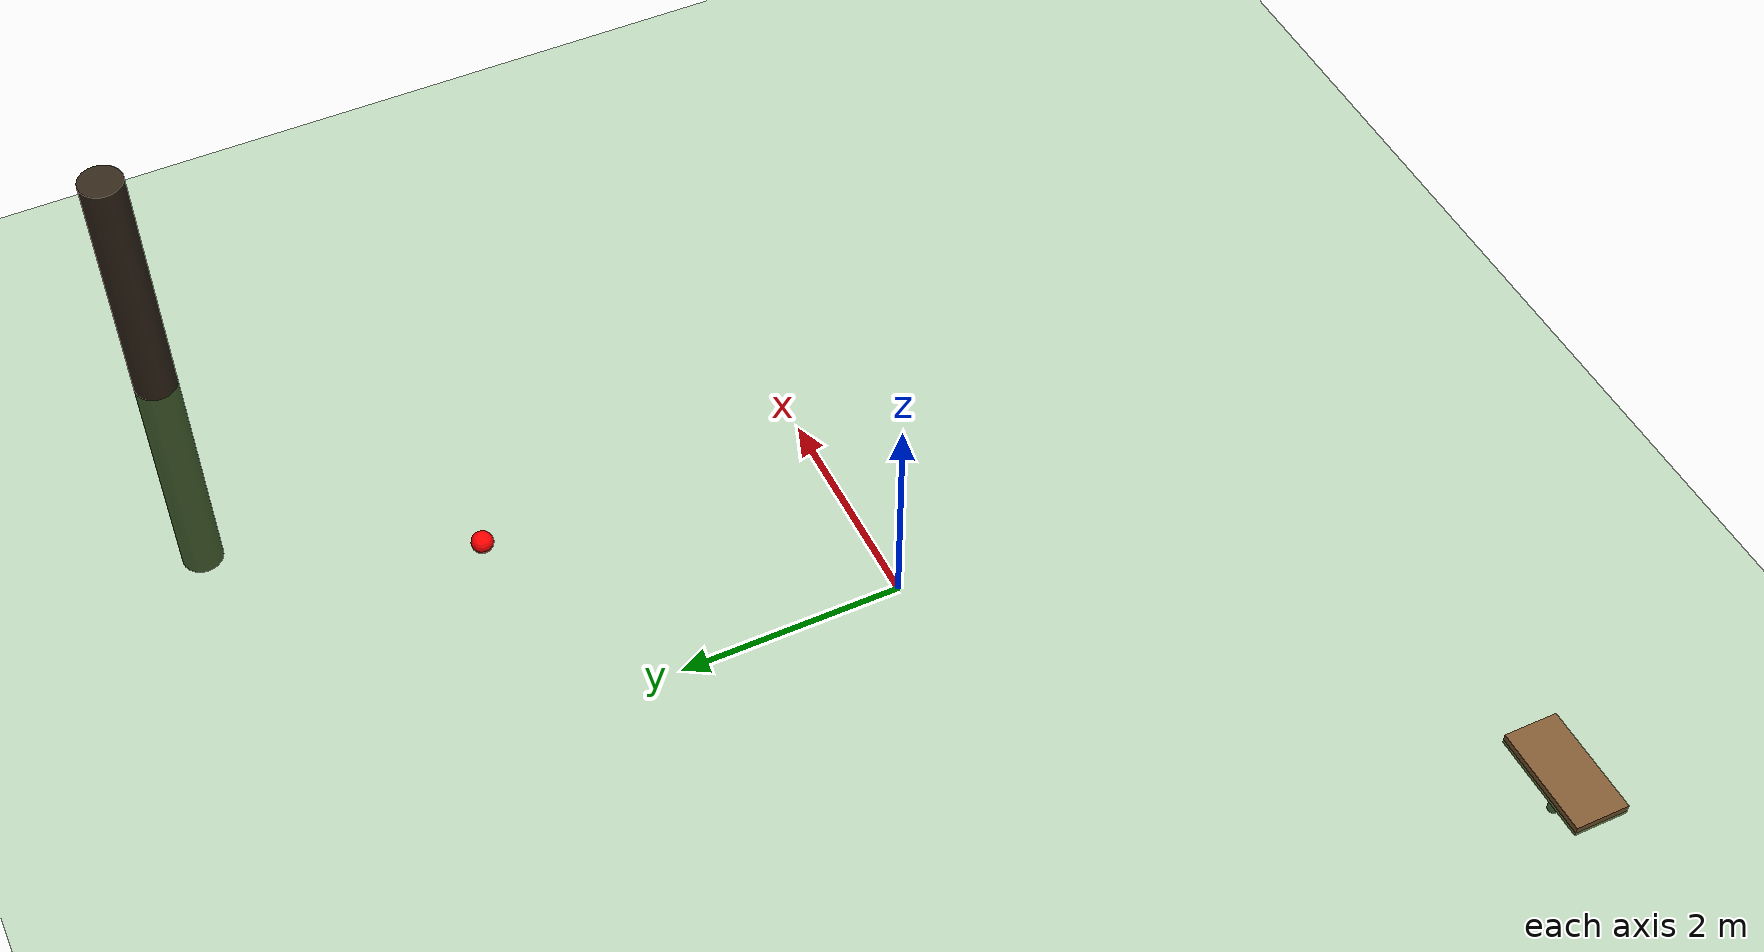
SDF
<?xml version="1.0"?>
<sdf version="1.4">
  <world name="garden_world">

    <!-- place user camera -->
    <gui>
      <camera name="user_camera">
        <pose>-21.660200 -11.942800 12.053900 0.000000 0.443643 0.352194</pose>
      </camera>
    </gui>

    <!-- Set up physics properties -->
    <physics type="ode">
      <max_step_size>0.001</max_step_size>
      <real_time_update_rate>1000</real_time_update_rate>
    </physics>

    <!-- Sunlight -->
    <light name="sun" type="directional">
      <cast_shadows>true</cast_shadows>
      <pose>0 0 10 0 -0.5 0.5</pose>
      <diffuse>0.8 0.8 0.8 1</diffuse>
      <specular>0.2 0.2 0.2 1</specular>
      <direction>-0.5 0.5 -1</direction>
    </light>

    <!-- Ground plane -->
    <model name="ground_plane">
      <static>true</static>
      <link name="ground_plane_link">
        <collision name="collision">
          <geometry>
            <plane>
              <normal>0 0 1</normal>
              <size>20 20</size>
            </plane>
          </geometry>
          <surface>
            <friction>
              <ode>
                <mu>0.8</mu>
                <mu2>0.8</mu2>
              </ode>
            </friction>
          </surface>
        </collision>
        <visual name="visual">
          <geometry>
            <plane>
              <normal>0 0 1</normal>
              <size>20 20</size>
            </plane>
          </geometry>
          <material>
            <script>
              <uri>file://media/materials/scripts/gazebo.material</uri>
              <name>Gazebo/Grass</name>
            </script>
          </material>
        </visual>
      </link>
    </model>

    <!-- Tree model -->
    <model name="tree_1">
      <static>true</static>
      <pose>5 5 0 0 0 0</pose>
      <link name="tree_link">
        <collision name="tree_collision">
          <geometry>
            <cylinder>
              <radius>0.2</radius>
              <length>5.0</length>
            </cylinder>
          </geometry>
        </collision>
        <visual name="tree_visual">
          <geometry>
            <cylinder>
              <radius>0.2</radius>
              <length>5.0</length>
            </cylinder>
          </geometry>
          <material>
            <ambient>0.2 0.15 0.1 1.0</ambient>
          </material>
        </visual>
      </link>
    </model>

    <!-- Flower model -->
    <model name="flower_1">
      <static>true</static>
      <pose>2 3 0 0 0 0</pose>
      <link name="flower_link">
        <collision name="flower_collision">
          <geometry>
            <sphere>
              <radius>0.1</radius>
            </sphere>
          </geometry>
        </collision>
        <visual name="flower_visual">
          <geometry>
            <sphere>
              <radius>0.1</radius>
            </sphere>
          </geometry>
          <material>
            <ambient>1.0 0.0 0.0 1.0</ambient>
          </material>
        </visual>
      </link>
    </model>

    <!-- Bench model -->
    <model name="bench">
      <static>true</static>
      <pose>-4 -4 0 0 0 0</pose>
      <link name="bench_seat">
        <collision name="seat_collision">
          <geometry>
            <box>
              <size>1.0 0.5 0.1</size>
            </box>
          </geometry>
        </collision>
        <visual name="seat_visual">
          <geometry>
            <box>
              <size>1.0 0.5 0.1</size>
            </box>
          </geometry>
          <material>
            <ambient>0.5 0.35 0.2 1.0</ambient>
          </material>
        </visual>
      </link>
      <link name="bench_legs">
        <pose>0 0 -0.25 0 0 0</pose>
        <collision name="leg_collision">
          <geometry>
            <cylinder>
              <radius>0.05</radius>
              <length>0.5</length>
            </cylinder>
          </geometry>
        </collision>
        <visual name="leg_visual">
          <geometry>
            <cylinder>
              <radius>0.05</radius>
              <length>0.5</length>
            </cylinder>
          </geometry>
          <material>
            <ambient>0.2 0.2 0.2 1.0</ambient>
          </material>
        </visual>
      </link>
    </model>

  </world>
</sdf>
